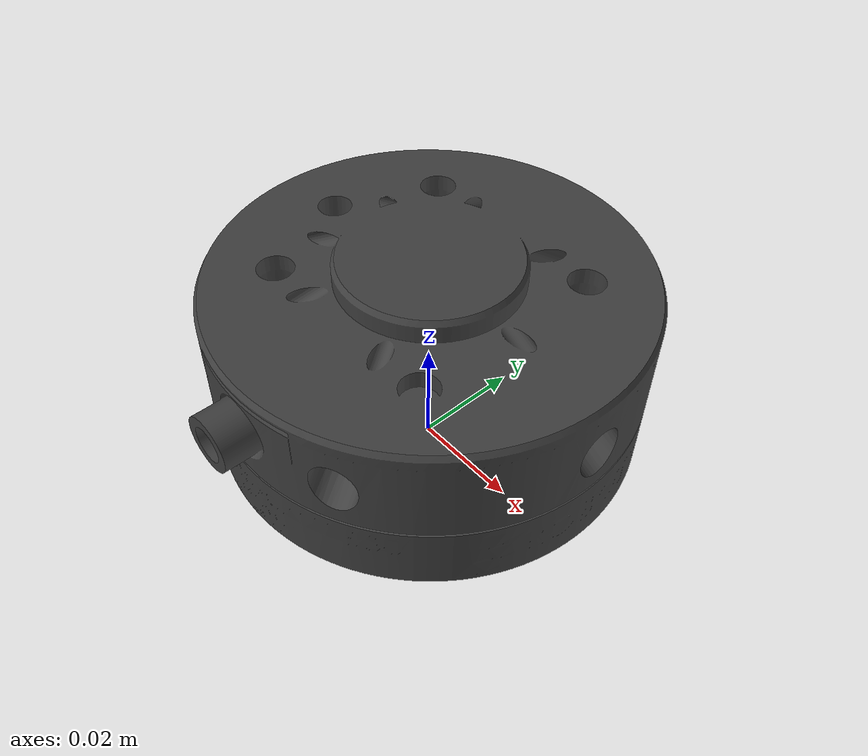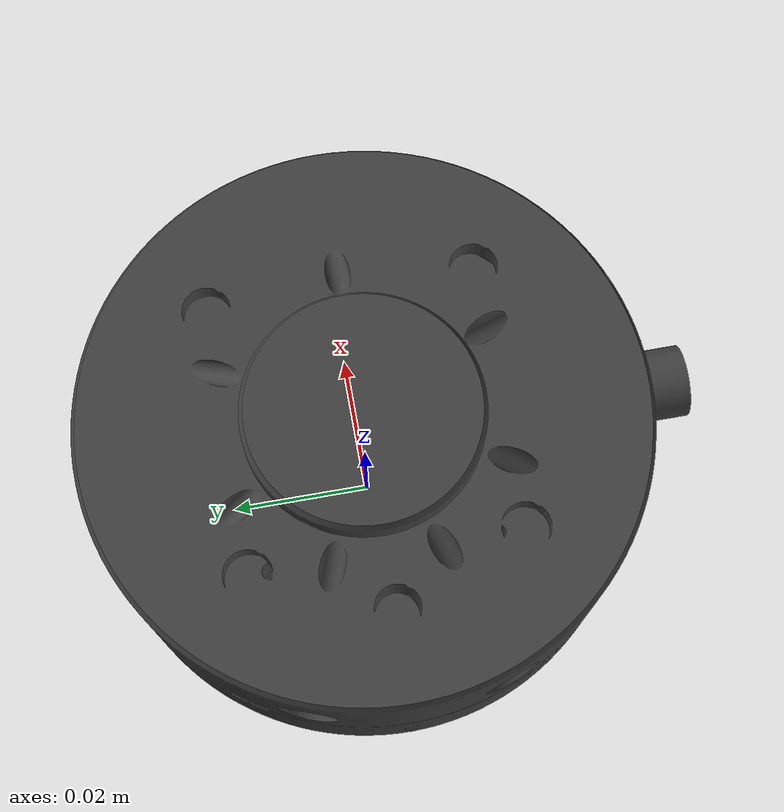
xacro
<?xml version="1.0"?>
<robot xmlns:xacro="http://ros.org/wiki/xacro"
       name="robotiq_ft_300" >

  <!-- ft_300 -->
  <xacro:include filename="$(find mobipick_description)/urdf/robotiq_ft_300/robotiq_ft_300.urdf.xacro" />

  <link name="world" />

  <!-- sensor -->
  <xacro:robotiq_ft_300 parent="world" prefix="" >
      <pose xyz="0 0 0.009" rpy="0 0 0" />
  </xacro:robotiq_ft_300>

</robot>

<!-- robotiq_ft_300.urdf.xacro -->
<robot xmlns:xacro="http://ros.org/wiki/xacro" name="robotiq_ft_300">

    <xacro:macro name="robotiq_ft_300" params="parent prefix *origin">

        <!-- mount the fts to the robot -->
        <joint name="${prefix}fts_fix" type="fixed" >
            <insert_block name="origin" />
            <parent link="${parent}" />
            <child link="${prefix}fts_robotside" />
        </joint>

        <link name="${prefix}fts_robotside">
            <inertial>
                <origin xyz="0 0 0.01875" rpy="0 0 0"/>
                <mass value="0.3"/>
		<inertia ixx="0.000262" ixy="0" ixz="1" iyy="0.000265" iyz="1" izz="0.000219" />
            </inertial>

            <visual>
                <origin xyz="0 0 0" rpy="0 0 0" />
                <geometry>
                    <mesh filename="package://mobipick_description/meshes/robotiq_ft_300/visual/robotiq_ft_300.stl"/>
                </geometry>
		<material name="">
		  <color rgba="0.25 0.25 0.25 1" />
		</material>
            </visual>

            <collision>
                <origin xyz="0 0 0" rpy="0 0 0" />
                <geometry>
                    <mesh filename="package://mobipick_description/meshes/robotiq_ft_300/collision/robotiq_ft_300.stl"/>
                </geometry>
            </collision>
        </link>

        <!-- virtual measurement frame -->
        <joint name="${prefix}measurment_joint" type="fixed" >
            <origin xyz="0 0 0.01625" rpy="0 0 0" />
            <parent link="${prefix}fts_robotside" />
            <child link="${prefix}robotiq_force_torque_frame_id" />
        </joint>
        <link name="${prefix}robotiq_force_torque_frame_id"/>

        <!-- toolside frame -->
        <joint name="${prefix}toolside_joint" type="fixed" >
            <origin xyz="0 0 0.0375" rpy="0 0 0" />
            <parent link="${prefix}fts_robotside" />
            <child link="${prefix}fts_toolside" />
        </joint>
        <link name="${prefix}fts_toolside"/>

    </xacro:macro>
</robot>
